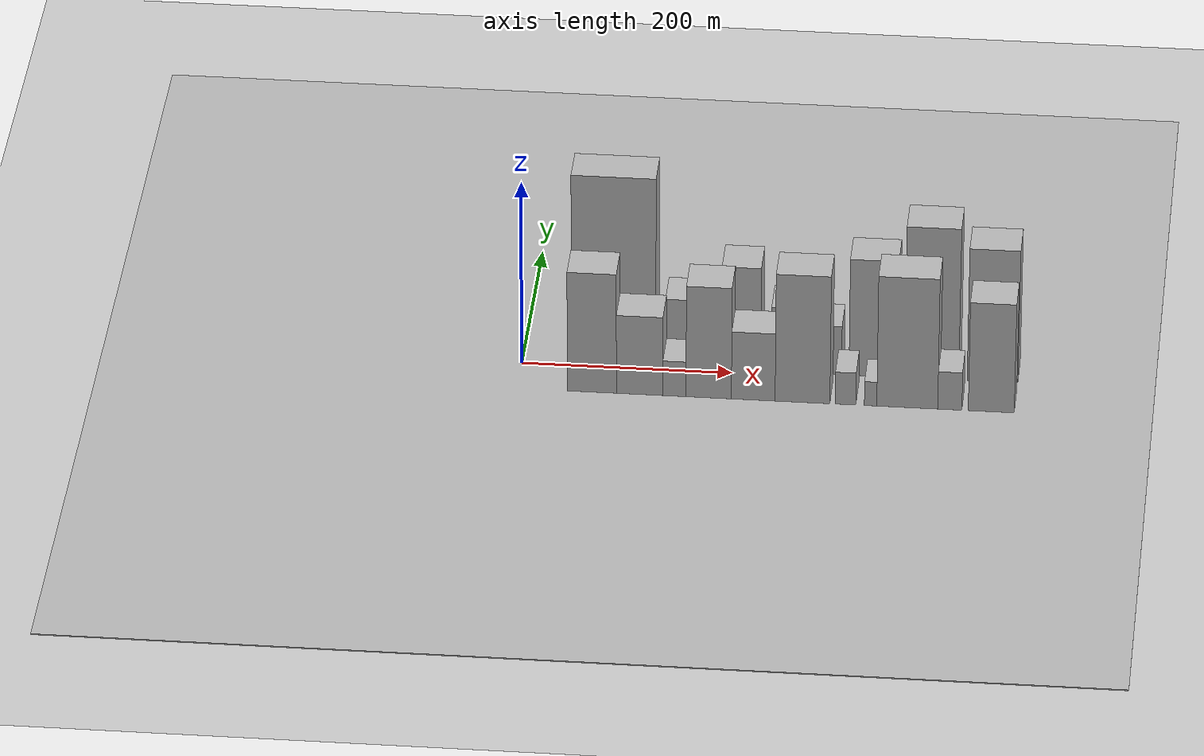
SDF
<?xml version="1.0" encoding="utf-8"?>

<sdf version="1.6">

   <world name="default">

      <gui fullscreen="0">

         <camera name="user_camera">

            <pose>-15 0 4.57585 0 0 0</pose>

            <view_controller>orbit</view_controller>

         </camera>

      </gui>

      <scene>

         <sky>

           <clouds>

             <speed>12</speed>

           </clouds>

         </sky>

         <ambient>0.4 0.4 0.4 1</ambient>

         <background>0.7 0.7 0.7 1</background>

         <shadows>1</shadows>

      </scene>

      <gravity>0 0 -9.8066</gravity>

      <magnetic_field>6e-06 2.3e-05 -4.2e-05</magnetic_field>

      <physics default="0" name="default_physics" type="ode">

         <ode>

            <solver>

               <type>quick</type>

               <iters>10</iters>

               <sor>1.0</sor>

               <use_dynamic_moi_rescaling>0</use_dynamic_moi_rescaling>

            </solver>

            <constraints>

               <cfm>0</cfm>

               <erp>0.2</erp>

               <contact_max_correcting_vel>100</contact_max_correcting_vel>

               <contact_surface_layer>0.001</contact_surface_layer>

            </constraints>

         </ode>

         <max_step_size>0.004</max_step_size>

         <real_time_factor>1</real_time_factor>

         <real_time_update_rate>250</real_time_update_rate>

      </physics>

      <light name="sun" type="directional">

         <cast_shadows>1</cast_shadows>

         <pose>0 0 10 0 0 0</pose>

         <diffuse>0.8 0.8 0.8 1</diffuse>

         <specular>0.2 0.2 0.2 1</specular>

         <attenuation>

            <range>1000</range>

            <constant>0.9</constant>

            <linear>0.01</linear>

            <quadratic>0.001</quadratic>

         </attenuation>

         <direction>-0.5 0.1 -0.9</direction>

      </light>

      <include>

         <name>ground_plane_1</name>

         <uri>model://HANNAS_ground_plane</uri>

         <pose>0 0 0  0 0 0</pose>

      </include>

      <include>

         <name>ground_plane_2</name>

         <uri>model://HANNAS_ground_plane</uri>

         <pose>100 0 0  0 0 0</pose>

      </include>

      <model name="building_1">

         <static>1</static>

         <pose frame="">86.1554 26.0000 0 0.000000 0.000000 1.570796</pose>

         <link name="link">

            <pose frame="">0 0 103.50 0 0 0</pose>

            <collision name="collision">

               <geometry>

                  <box>

                     <size>40.0000 80.3109 207.0000</size>

                  </box>

               </geometry>

               <max_contacts>10</max_contacts>

               <surface>

                  <contact>

                     <ode/>

                  </contact>

                  <bounce/>

                  <friction>

                     <torsional>

                        <ode/>

                     </torsional>

                     <ode/>

                  </friction>

               </surface>

            </collision>

            <visual name="visual">

               <cast_shadows>0</cast_shadows>

               <geometry>

                  <box>

                     <size>40.0000 80.3109 207.0000</size>

                  </box>

               </geometry>

               <material>

                  <script>

                     <uri>model://HANNAS_wall/materials/scripts</uri>

                     <uri>model://HANNAS_wall/materials/textures</uri>

                     <name>vrc/HANNAS_wall</name>

                  </script>

               </material>

            </visual>

            <self_collide>0</self_collide>

            <enable_wind>0</enable_wind>

            <kinematic>0</kinematic>

         </link>

      </model>

      <model name="building_2">

         <static>1</static>

         <pose frame="">157.5540 26.0000 0 0.000000 0.000000 1.570796</pose>

         <link name="link">

            <pose frame="">0 0 37.50 0 0 0</pose>

            <collision name="collision">

               <geometry>

                  <box>

                     <size>40.0000 44.4862 75.0000</size>

                  </box>

               </geometry>

               <max_contacts>10</max_contacts>

               <surface>

                  <contact>

                     <ode/>

                  </contact>

                  <bounce/>

                  <friction>

                     <torsional>

                        <ode/>

                     </torsional>

                     <ode/>

                  </friction>

               </surface>

            </collision>

            <visual name="visual">

               <cast_shadows>0</cast_shadows>

               <geometry>

                  <box>

                     <size>40.0000 44.4862 75.0000</size>

                  </box>

               </geometry>

               <material>

                  <script>

                     <uri>model://HANNAS_wall/materials/scripts</uri>

                     <uri>model://HANNAS_wall/materials/textures</uri>

                     <name>vrc/HANNAS_wall</name>

                  </script>

               </material>

            </visual>

            <self_collide>0</self_collide>

            <enable_wind>0</enable_wind>

            <kinematic>0</kinematic>

         </link>

      </model>

      <model name="building_3">

         <static>1</static>

         <pose frame="">207.4365 26.0000 0 0.000000 0.000000 1.570796</pose>

         <link name="link">

            <pose frame="">0 0 57.00 0 0 0</pose>

            <collision name="collision">

               <geometry>

                  <box>

                     <size>40.0000 37.2788 114.0000</size>

                  </box>

               </geometry>

               <max_contacts>10</max_contacts>

               <surface>

                  <contact>

                     <ode/>

                  </contact>

                  <bounce/>

                  <friction>

                     <torsional>

                        <ode/>

                     </torsional>

                     <ode/>

                  </friction>

               </surface>

            </collision>

            <visual name="visual">

               <cast_shadows>0</cast_shadows>

               <geometry>

                  <box>

                     <size>40.0000 37.2788 114.0000</size>

                  </box>

               </geometry>

               <material>

                  <script>

                     <uri>model://HANNAS_wall/materials/scripts</uri>

                     <uri>model://HANNAS_wall/materials/textures</uri>

                     <name>vrc/HANNAS_wall</name>

                  </script>

               </material>

            </visual>

            <self_collide>0</self_collide>

            <enable_wind>0</enable_wind>

            <kinematic>0</kinematic>

         </link>

      </model>

      <model name="building_4">

         <static>1</static>

         <pose frame="">254.5693 26.0000 0 0.000000 0.000000 1.570796</pose>

         <link name="link">

            <pose frame="">0 0 36.00 0 0 0</pose>

            <collision name="collision">

               <geometry>

                  <box>

                     <size>40.0000 36.9867 72.0000</size>

                  </box>

               </geometry>

               <max_contacts>10</max_contacts>

               <surface>

                  <contact>

                     <ode/>

                  </contact>

                  <bounce/>

                  <friction>

                     <torsional>

                        <ode/>

                     </torsional>

                     <ode/>

                  </friction>

               </surface>

            </collision>

            <visual name="visual">

               <cast_shadows>0</cast_shadows>

               <geometry>

                  <box>

                     <size>40.0000 36.9867 72.0000</size>

                  </box>

               </geometry>

               <material>

                  <script>

                     <uri>model://HANNAS_wall/materials/scripts</uri>

                     <uri>model://HANNAS_wall/materials/textures</uri>

                     <name>vrc/HANNAS_wall</name>

                  </script>

               </material>

            </visual>

            <self_collide>0</self_collide>

            <enable_wind>0</enable_wind>

            <kinematic>0</kinematic>

         </link>

      </model>

      <model name="building_5">

         <static>1</static>

         <pose frame="">287.9815 26.0000 0 0.000000 0.000000 1.570796</pose>

         <link name="link">

            <pose frame="">0 0 27.00 0 0 0</pose>

            <collision name="collision">

               <geometry>

                  <box>

                     <size>40.0000 29.8376 54.0000</size>

                  </box>

               </geometry>

               <max_contacts>10</max_contacts>

               <surface>

                  <contact>

                     <ode/>

                  </contact>

                  <bounce/>

                  <friction>

                     <torsional>

                        <ode/>

                     </torsional>

                     <ode/>

                  </friction>

               </surface>

            </collision>

            <visual name="visual">

               <cast_shadows>0</cast_shadows>

               <geometry>

                  <box>

                     <size>40.0000 29.8376 54.0000</size>

                  </box>

               </geometry>

               <material>

                  <script>

                     <uri>model://HANNAS_wall/materials/scripts</uri>

                     <uri>model://HANNAS_wall/materials/textures</uri>

                     <name>vrc/HANNAS_wall</name>

                  </script>

               </material>

            </visual>

            <self_collide>0</self_collide>

            <enable_wind>0</enable_wind>

            <kinematic>0</kinematic>

         </link>

      </model>

      <model name="building_6">

         <static>1</static>

         <pose frame="">332.8033 26.0000 0 0.000000 0.000000 1.570796</pose>

         <link name="link">

            <pose frame="">0 0 64.50 0 0 0</pose>

            <collision name="collision">

               <geometry>

                  <box>

                     <size>40.0000 45.8060 129.0000</size>

                  </box>

               </geometry>

               <max_contacts>10</max_contacts>

               <surface>

                  <contact>

                     <ode/>

                  </contact>

                  <bounce/>

                  <friction>

                     <torsional>

                        <ode/>

                     </torsional>

                     <ode/>

                  </friction>

               </surface>

            </collision>

            <visual name="visual">

               <cast_shadows>0</cast_shadows>

               <geometry>

                  <box>

                     <size>40.0000 45.8060 129.0000</size>

                  </box>

               </geometry>

               <material>

                  <script>

                     <uri>model://HANNAS_wall/materials/scripts</uri>

                     <uri>model://HANNAS_wall/materials/textures</uri>

                     <name>vrc/HANNAS_wall</name>

                  </script>

               </material>

            </visual>

            <self_collide>0</self_collide>

            <enable_wind>0</enable_wind>

            <kinematic>0</kinematic>

         </link>

      </model>

      <model name="building_7">

         <static>1</static>

         <pose frame="">388.3900 26.0000 0 0.000000 0.000000 1.570796</pose>

         <link name="link">

            <pose frame="">0 0 84.00 0 0 0</pose>

            <collision name="collision">

               <geometry>

                  <box>

                     <size>40.0000 51.3673 168.0000</size>

                  </box>

               </geometry>

               <max_contacts>10</max_contacts>

               <surface>

                  <contact>

                     <ode/>

                  </contact>

                  <bounce/>

                  <friction>

                     <torsional>

                        <ode/>

                     </torsional>

                     <ode/>

                  </friction>

               </surface>

            </collision>

            <visual name="visual">

               <cast_shadows>0</cast_shadows>

               <geometry>

                  <box>

                     <size>40.0000 51.3673 168.0000</size>

                  </box>

               </geometry>

               <material>

                  <script>

                     <uri>model://HANNAS_wall/materials/scripts</uri>

                     <uri>model://HANNAS_wall/materials/textures</uri>

                     <name>vrc/HANNAS_wall</name>

                  </script>

               </material>

            </visual>

            <self_collide>0</self_collide>

            <enable_wind>0</enable_wind>

            <kinematic>0</kinematic>

         </link>

      </model>

      <model name="building_8">

         <static>1</static>

         <pose frame="">446.0508 26.0000 0 0.000000 0.000000 1.570796</pose>

         <link name="link">

            <pose frame="">0 0 73.50 0 0 0</pose>

            <collision name="collision">

               <geometry>

                  <box>

                     <size>40.0000 47.9543 147.0000</size>

                  </box>

               </geometry>

               <max_contacts>10</max_contacts>

               <surface>

                  <contact>

                     <ode/>

                  </contact>

                  <bounce/>

                  <friction>

                     <torsional>

                        <ode/>

                     </torsional>

                     <ode/>

                  </friction>

               </surface>

            </collision>

            <visual name="visual">

               <cast_shadows>0</cast_shadows>

               <geometry>

                  <box>

                     <size>40.0000 47.9543 147.0000</size>

                  </box>

               </geometry>

               <material>

                  <script>

                     <uri>model://HANNAS_wall/materials/scripts</uri>

                     <uri>model://HANNAS_wall/materials/textures</uri>

                     <name>vrc/HANNAS_wall</name>

                  </script>

               </material>

            </visual>

            <self_collide>0</self_collide>

            <enable_wind>0</enable_wind>

            <kinematic>0</kinematic>

         </link>

      </model>

      <model name="building_9">

         <static>1</static>

         <pose frame="">70.2439 -26.0000 0 0.000000 0.000000 1.570796</pose>

         <link name="link">

            <pose frame="">0 0 66.00 0 0 0</pose>

            <collision name="collision">

               <geometry>

                  <box>

                     <size>40.0000 46.4878 132.0000</size>

                  </box>

               </geometry>

               <max_contacts>10</max_contacts>

               <surface>

                  <contact>

                     <ode/>

                  </contact>

                  <bounce/>

                  <friction>

                     <torsional>

                        <ode/>

                     </torsional>

                     <ode/>

                  </friction>

               </surface>

            </collision>

            <visual name="visual">

               <cast_shadows>0</cast_shadows>

               <geometry>

                  <box>

                     <size>40.0000 46.4878 132.0000</size>

                  </box>

               </geometry>

               <material>

                  <script>

                     <uri>model://HANNAS_wall/materials/scripts</uri>

                     <uri>model://HANNAS_wall/materials/textures</uri>

                     <name>vrc/HANNAS_wall</name>

                  </script>

               </material>

            </visual>

            <self_collide>0</self_collide>

            <enable_wind>0</enable_wind>

            <kinematic>0</kinematic>

         </link>

      </model>

      <model name="building_10">

         <static>1</static>

         <pose frame="">115.5316 -26.0000 0 0.000000 0.000000 1.570796</pose>

         <link name="link">

            <pose frame="">0 0 43.50 0 0 0</pose>

            <collision name="collision">

               <geometry>

                  <box>

                     <size>40.0000 44.0876 87.0000</size>

                  </box>

               </geometry>

               <max_contacts>10</max_contacts>

               <surface>

                  <contact>

                     <ode/>

                  </contact>

                  <bounce/>

                  <friction>

                     <torsional>

                        <ode/>

                     </torsional>

                     <ode/>

                  </friction>

               </surface>

            </collision>

            <visual name="visual">

               <cast_shadows>0</cast_shadows>

               <geometry>

                  <box>

                     <size>40.0000 44.0876 87.0000</size>

                  </box>

               </geometry>

               <material>

                  <script>

                     <uri>model://HANNAS_wall/materials/scripts</uri>

                     <uri>model://HANNAS_wall/materials/textures</uri>

                     <name>vrc/HANNAS_wall</name>

                  </script>

               </material>

            </visual>

            <self_collide>0</self_collide>

            <enable_wind>0</enable_wind>

            <kinematic>0</kinematic>

         </link>

      </model>

      <model name="building_11">

         <static>1</static>

         <pose frame="">148.5703 -26.0000 0 0.000000 0.000000 1.570796</pose>

         <link name="link">

            <pose frame="">0 0 19.50 0 0 0</pose>

            <collision name="collision">

               <geometry>

                  <box>

                     <size>40.0000 21.9899 39.0000</size>

                  </box>

               </geometry>

               <max_contacts>10</max_contacts>

               <surface>

                  <contact>

                     <ode/>

                  </contact>

                  <bounce/>

                  <friction>

                     <torsional>

                        <ode/>

                     </torsional>

                     <ode/>

                  </friction>

               </surface>

            </collision>

            <visual name="visual">

               <cast_shadows>0</cast_shadows>

               <geometry>

                  <box>

                     <size>40.0000 21.9899 39.0000</size>

                  </box>

               </geometry>

               <material>

                  <script>

                     <uri>model://HANNAS_wall/materials/scripts</uri>

                     <uri>model://HANNAS_wall/materials/textures</uri>

                     <name>vrc/HANNAS_wall</name>

                  </script>

               </material>

            </visual>

            <self_collide>0</self_collide>

            <enable_wind>0</enable_wind>

            <kinematic>0</kinematic>

         </link>

      </model>

      <model name="building_12">

         <static>1</static>

         <pose frame="">181.0442 -26.0000 0 0.000000 0.000000 1.570796</pose>

         <link name="link">

            <pose frame="">0 0 61.50 0 0 0</pose>

            <collision name="collision">

               <geometry>

                  <box>

                     <size>40.0000 42.9579 123.0000</size>

                  </box>

               </geometry>

               <max_contacts>10</max_contacts>

               <surface>

                  <contact>

                     <ode/>

                  </contact>

                  <bounce/>

                  <friction>

                     <torsional>

                        <ode/>

                     </torsional>

                     <ode/>

                  </friction>

               </surface>

            </collision>

            <visual name="visual">

               <cast_shadows>0</cast_shadows>

               <geometry>

                  <box>

                     <size>40.0000 42.9579 123.0000</size>

                  </box>

               </geometry>

               <material>

                  <script>

                     <uri>model://HANNAS_wall/materials/scripts</uri>

                     <uri>model://HANNAS_wall/materials/textures</uri>

                     <name>vrc/HANNAS_wall</name>

                  </script>

               </material>

            </visual>

            <self_collide>0</self_collide>

            <enable_wind>0</enable_wind>

            <kinematic>0</kinematic>

         </link>

      </model>

      <model name="building_13">

         <static>1</static>

         <pose frame="">223.2081 -26.0000 0 0.000000 0.000000 1.570796</pose>

         <link name="link">

            <pose frame="">0 0 37.50 0 0 0</pose>

            <collision name="collision">

               <geometry>

                  <box>

                     <size>40.0000 41.3700 75.0000</size>

                  </box>

               </geometry>

               <max_contacts>10</max_contacts>

               <surface>

                  <contact>

                     <ode/>

                  </contact>

                  <bounce/>

                  <friction>

                     <torsional>

                        <ode/>

                     </torsional>

                     <ode/>

                  </friction>

               </surface>

            </collision>

            <visual name="visual">

               <cast_shadows>0</cast_shadows>

               <geometry>

                  <box>

                     <size>40.0000 41.3700 75.0000</size>

                  </box>

               </geometry>

               <material>

                  <script>

                     <uri>model://HANNAS_wall/materials/scripts</uri>

                     <uri>model://HANNAS_wall/materials/textures</uri>

                     <name>vrc/HANNAS_wall</name>

                  </script>

               </material>

            </visual>

            <self_collide>0</self_collide>

            <enable_wind>0</enable_wind>

            <kinematic>0</kinematic>

         </link>

      </model>

      <model name="building_14">

         <static>1</static>

         <pose frame="">269.7874 -26.0000 0 0.000000 0.000000 1.570796</pose>

         <link name="link">

            <pose frame="">0 0 70.50 0 0 0</pose>

            <collision name="collision">

               <geometry>

                  <box>

                     <size>40.0000 51.7885 141.0000</size>

                  </box>

               </geometry>

               <max_contacts>10</max_contacts>

               <surface>

                  <contact>

                     <ode/>

                  </contact>

                  <bounce/>

                  <friction>

                     <torsional>

                        <ode/>

                     </torsional>

                     <ode/>

                  </friction>

               </surface>

            </collision>

            <visual name="visual">

               <cast_shadows>0</cast_shadows>

               <geometry>

                  <box>

                     <size>40.0000 51.7885 141.0000</size>

                  </box>

               </geometry>

               <material>

                  <script>

                     <uri>model://HANNAS_wall/materials/scripts</uri>

                     <uri>model://HANNAS_wall/materials/textures</uri>

                     <name>vrc/HANNAS_wall</name>

                  </script>

               </material>

            </visual>

            <self_collide>0</self_collide>

            <enable_wind>0</enable_wind>

            <kinematic>0</kinematic>

         </link>

      </model>

      <model name="building_15">

         <static>1</static>

         <pose frame="">310.4677 -26.0000 0 0.000000 0.000000 1.570796</pose>

         <link name="link">

            <pose frame="">0 0 18.00 0 0 0</pose>

            <collision name="collision">

               <geometry>

                  <box>

                     <size>40.0000 19.5721 36.0000</size>

                  </box>

               </geometry>

               <max_contacts>10</max_contacts>

               <surface>

                  <contact>

                     <ode/>

                  </contact>

                  <bounce/>

                  <friction>

                     <torsional>

                        <ode/>

                     </torsional>

                     <ode/>

                  </friction>

               </surface>

            </collision>

            <visual name="visual">

               <cast_shadows>0</cast_shadows>

               <geometry>

                  <box>

                     <size>40.0000 19.5721 36.0000</size>

                  </box>

               </geometry>

               <material>

                  <script>

                     <uri>model://HANNAS_wall/materials/scripts</uri>

                     <uri>model://HANNAS_wall/materials/textures</uri>

                     <name>vrc/HANNAS_wall</name>

                  </script>

               </material>

            </visual>

            <self_collide>0</self_collide>

            <enable_wind>0</enable_wind>

            <kinematic>0</kinematic>

         </link>

      </model>

      <model name="building_16">

         <static>1</static>

         <pose frame="">334.1356 -26.0000 0 0.000000 0.000000 1.570796</pose>

         <link name="link">

            <pose frame="">0 0 13.50 0 0 0</pose>

            <collision name="collision">

               <geometry>

                  <box>

                     <size>40.0000 11.7637 27.0000</size>

                  </box>

               </geometry>

               <max_contacts>10</max_contacts>

               <surface>

                  <contact>

                     <ode/>

                  </contact>

                  <bounce/>

                  <friction>

                     <torsional>

                        <ode/>

                     </torsional>

                     <ode/>

                  </friction>

               </surface>

            </collision>

            <visual name="visual">

               <cast_shadows>0</cast_shadows>

               <geometry>

                  <box>

                     <size>40.0000 11.7637 27.0000</size>

                  </box>

               </geometry>

               <material>

                  <script>

                     <uri>model://HANNAS_wall/materials/scripts</uri>

                     <uri>model://HANNAS_wall/materials/textures</uri>

                     <name>vrc/HANNAS_wall</name>

                  </script>

               </material>

            </visual>

            <self_collide>0</self_collide>

            <enable_wind>0</enable_wind>

            <kinematic>0</kinematic>

         </link>

      </model>

      <model name="building_17">

         <static>1</static>

         <pose frame="">368.7815 -26.0000 0 0.000000 0.000000 1.570796</pose>

         <link name="link">

            <pose frame="">0 0 72.00 0 0 0</pose>

            <collision name="collision">

               <geometry>

                  <box>

                     <size>40.0000 57.5281 144.0000</size>

                  </box>

               </geometry>

               <max_contacts>10</max_contacts>

               <surface>

                  <contact>

                     <ode/>

                  </contact>

                  <bounce/>

                  <friction>

                     <torsional>

                        <ode/>

                     </torsional>

                     <ode/>

                  </friction>

               </surface>

            </collision>

            <visual name="visual">

               <cast_shadows>0</cast_shadows>

               <geometry>

                  <box>

                     <size>40.0000 57.5281 144.0000</size>

                  </box>

               </geometry>

               <material>

                  <script>

                     <uri>model://HANNAS_wall/materials/scripts</uri>

                     <uri>model://HANNAS_wall/materials/textures</uri>

                     <name>vrc/HANNAS_wall</name>

                  </script>

               </material>

            </visual>

            <self_collide>0</self_collide>

            <enable_wind>0</enable_wind>

            <kinematic>0</kinematic>

         </link>

      </model>

      <model name="building_18">

         <static>1</static>

         <pose frame="">408.9415 -26.0000 0 0.000000 0.000000 1.570796</pose>

         <link name="link">

            <pose frame="">0 0 21.00 0 0 0</pose>

            <collision name="collision">

               <geometry>

                  <box>

                     <size>40.0000 22.7921 42.0000</size>

                  </box>

               </geometry>

               <max_contacts>10</max_contacts>

               <surface>

                  <contact>

                     <ode/>

                  </contact>

                  <bounce/>

                  <friction>

                     <torsional>

                        <ode/>

                     </torsional>

                     <ode/>

                  </friction>

               </surface>

            </collision>

            <visual name="visual">

               <cast_shadows>0</cast_shadows>

               <geometry>

                  <box>

                     <size>40.0000 22.7921 42.0000</size>

                  </box>

               </geometry>

               <material>

                  <script>

                     <uri>model://HANNAS_wall/materials/scripts</uri>

                     <uri>model://HANNAS_wall/materials/textures</uri>

                     <name>vrc/HANNAS_wall</name>

                  </script>

               </material>

            </visual>

            <self_collide>0</self_collide>

            <enable_wind>0</enable_wind>

            <kinematic>0</kinematic>

         </link>

      </model>

      <model name="building_19">

         <static>1</static>

         <pose frame="">448.0431 -26.0000 0 0.000000 0.000000 1.570796</pose>

         <link name="link">

            <pose frame="">0 0 60.00 0 0 0</pose>

            <collision name="collision">

               <geometry>

                  <box>

                     <size>40.0000 43.4111 120.0000</size>

                  </box>

               </geometry>

               <max_contacts>10</max_contacts>

               <surface>

                  <contact>

                     <ode/>

                  </contact>

                  <bounce/>

                  <friction>

                     <torsional>

                        <ode/>

                     </torsional>

                     <ode/>

                  </friction>

               </surface>

            </collision>

            <visual name="visual">

               <cast_shadows>0</cast_shadows>

               <geometry>

                  <box>

                     <size>40.0000 43.4111 120.0000</size>

                  </box>

               </geometry>

               <material>

                  <script>

                     <uri>model://HANNAS_wall/materials/scripts</uri>

                     <uri>model://HANNAS_wall/materials/textures</uri>

                     <name>vrc/HANNAS_wall</name>

                  </script>

               </material>

            </visual>

            <self_collide>0</self_collide>

            <enable_wind>0</enable_wind>

            <kinematic>0</kinematic>

         </link>

      </model>

   </world>

</sdf>

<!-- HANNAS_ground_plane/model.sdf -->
<sdf version="1.4">
<model name="HANNAS_ground_plane">
  <static>true</static>
    <link name="link">
      <collision name="collision">
        <geometry>
          <plane>
            <normal>0 0 1</normal>
            <size>1000 1000</size>
          </plane>
        </geometry>
        <surface>
          <friction>
            <ode>
              <mu>100</mu>
              <mu2>50</mu2>
            </ode>
          </friction>
        </surface>
      </collision>
      <visual name="visual">
        <cast_shadows>false</cast_shadows>
        <geometry>
          <plane>
            <normal>0 0 1</normal>
            <size>1000 1000</size>
          </plane>
        </geometry>
        <material>
          <script>
            <uri>model://HANNAS_ground_plane/materials/scripts/HANNAS_ground_plane.material</uri>
	    <uri>model://HANNAS_ground_plane/materials/textures</uri>
            <name>HANNASGroundPlane/Image</name>
          </script>
        </material>
      </visual>
    </link>
  </model>
</sdf>
